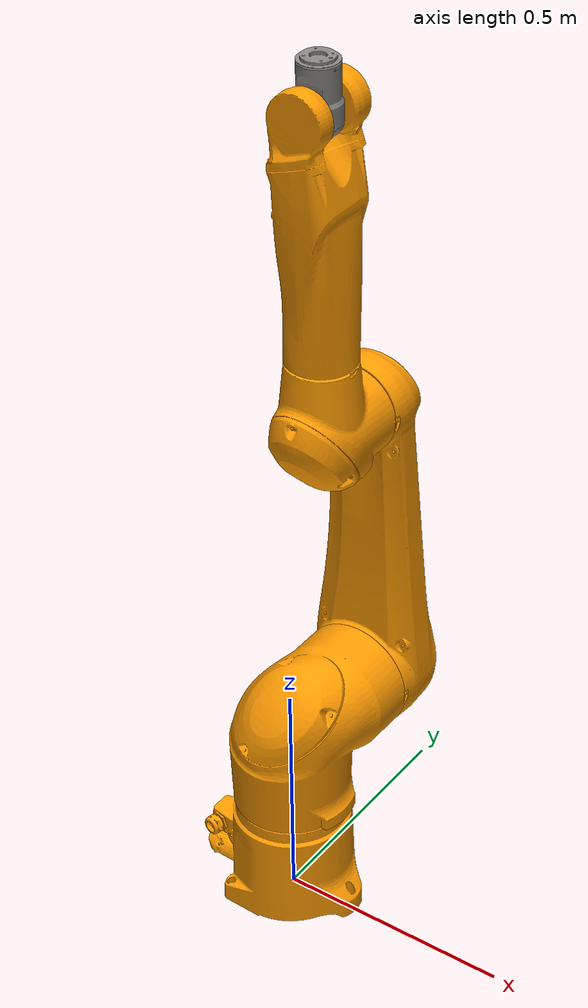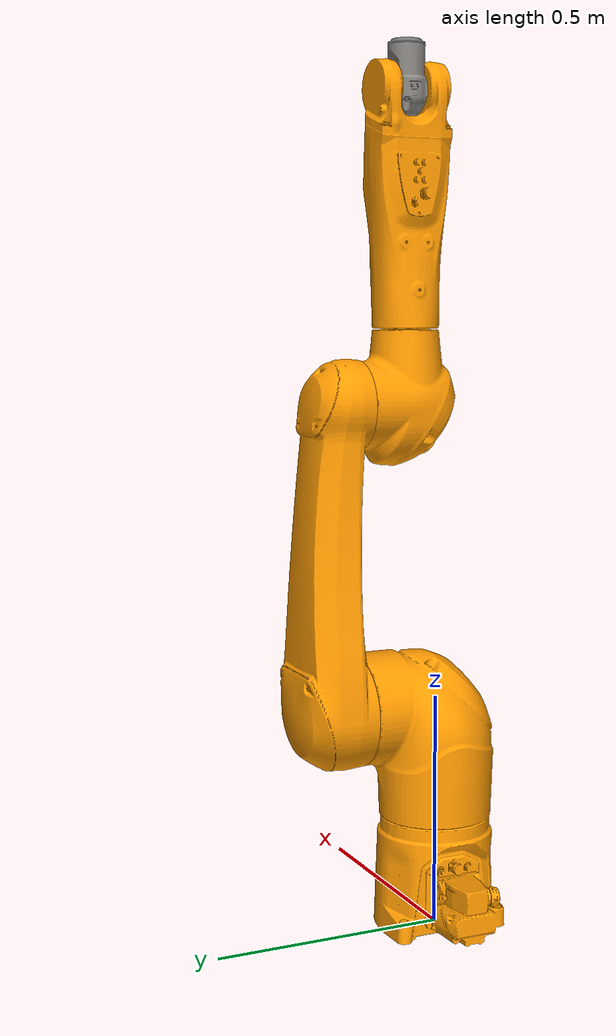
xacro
<?xml version="1.0" ?>
<!-- |    This document was autogenerated by xacro from /home/parallels/catkin_ws/src/staubli_tx2_90_support/urdf/tx2_90xl.xacro | -->
<!-- |    EDITING THIS FILE BY HAND IS NOT RECOMMENDED                                 | -->
<robot name="staubli_tx2_90xl">
    <!-- colours based on RAL values supplied by Staubli -->
    <!-- all RAL colours converted using http://www.visual-graphics.de/en/customer-care/ral-colours -->
    <!-- default colours for robots -->
    <!-- links: main serial chain -->
    <link name="base_link">
        <visual>
            <origin rpy="0 0 0" xyz="0 0 0" />
            <geometry>
                <mesh filename="package://staubli_tx2_90_support/meshes/tx2_90/visual/base_link.stl" />
            </geometry>
            <material name="">
                <color rgba="1.0 0.6078431372549019 0.0 1.0" />
            </material>
        </visual>
        <collision>
            <origin rpy="0 0 0" xyz="0 0 0" />
            <geometry>
                <mesh filename="package://staubli_tx2_90_support/meshes/tx2_90/collision/base_link.stl" />
            </geometry>
        </collision>

<inertial>
            <mass value="0.1" />
            <inertia ixx="0.003" iyy="0.02" izz="0.003" ixy="0.0" ixz="0.0" iyz="0.0" />
        </inertial>

    </link>
    <link name="link_1">
        <visual>
            <origin rpy="0 0 0" xyz="0 0 0" />
            <geometry>
                <mesh filename="package://staubli_tx2_90_support/meshes/tx2_90/visual/link_1.stl" />
            </geometry>
            <material name="">
                <color rgba="1.0 0.6078431372549019 0.0 1.0" />
            </material>
        </visual>
        <collision>
            <origin rpy="0 0 0" xyz="0 0 0" />
            <geometry>
                <mesh filename="package://staubli_tx2_90_support/meshes/tx2_90/collision/link_1.stl" />
            </geometry>
        </collision>

<inertial>
            <mass value="0.1" />
            <inertia ixx="0.003" iyy="0.02" izz="0.003" ixy="0.0" ixz="0.0" iyz="0.0" />
        </inertial>

    </link>
    <link name="link_2">
        <visual>
            <origin rpy="0 0 0" xyz="0 0 0" />
            <geometry>
                <mesh filename="package://staubli_tx2_90_support/meshes/tx2_90xl/visual/link_2.stl" />
            </geometry>
            <material name="">
                <color rgba="1.0 0.6078431372549019 0.0 1.0" />
            </material>
        </visual>
        <collision>
            <origin rpy="0 0 0" xyz="0 0 0" />
            <geometry>
                <mesh filename="package://staubli_tx2_90_support/meshes/tx2_90xl/collision/link_2.stl" />
            </geometry>
        </collision>

<inertial>
            <mass value="0.1" />
            <inertia ixx="0.003" iyy="0.02" izz="0.003" ixy="0.0" ixz="0.0" iyz="0.0" />
        </inertial>

    </link>
    <link name="link_3">
        <visual>
            <origin rpy="0 0 0" xyz="0 0 0" />
            <geometry>
                <mesh filename="package://staubli_tx2_90_support/meshes/tx2_90/visual/link_3.stl" />
            </geometry>
            <material name="">
                <color rgba="1.0 0.6078431372549019 0.0 1.0" />
            </material>
        </visual>
        <collision>
            <origin rpy="0 0 0" xyz="0 0 0" />
            <geometry>
                <mesh filename="package://staubli_tx2_90_support/meshes/tx2_90/collision/link_3.stl" />
            </geometry>
        </collision>

<inertial>
            <mass value="0.1" />
            <inertia ixx="0.003" iyy="0.02" izz="0.003" ixy="0.0" ixz="0.0" iyz="0.0" />
        </inertial>

    </link>
    <link name="link_4">
        <visual>
            <origin rpy="0 0 0" xyz="0 0 0" />
            <geometry>
                <mesh filename="package://staubli_tx2_90_support/meshes/tx2_90xl/visual/link_4.stl" />
            </geometry>
            <material name="">
                <color rgba="1.0 0.6078431372549019 0.0 1.0" />
            </material>
        </visual>
        <collision>
            <origin rpy="0 0 0" xyz="0 0 0" />
            <geometry>
                <mesh filename="package://staubli_tx2_90_support/meshes/tx2_90xl/collision/link_4.stl" />
            </geometry>
        </collision>

<inertial>
            <mass value="0.1" />
            <inertia ixx="0.003" iyy="0.02" izz="0.003" ixy="0.0" ixz="0.0" iyz="0.0" />
        </inertial>

    </link>
    <link name="link_5">
        <visual>
            <origin rpy="0 0 0" xyz="0 0 0" />
            <geometry>
                <mesh filename="package://staubli_tx2_90_support/meshes/tx2_90/visual/link_5.stl" />
            </geometry>
            <material name="">
                <color rgba="0.5294117647058824 0.5215686274509804 0.5058823529411764 1.0" />
            </material>
        </visual>
        <collision>
            <origin rpy="0 0 0" xyz="0 0 0" />
            <geometry>
                <mesh filename="package://staubli_tx2_90_support/meshes/tx2_90/collision/link_5.stl" />
            </geometry>
        </collision>

<inertial>
            <mass value="0.1" />
            <inertia ixx="0.003" iyy="0.02" izz="0.003" ixy="0.0" ixz="0.0" iyz="0.0" />
        </inertial>

    </link>
    <link name="link_6">
        <visual>
            <origin rpy="0 0 0" xyz="0 0 0" />
            <geometry>
                <mesh filename="package://staubli_tx2_90_support/meshes/tx2_90/visual/link_6.stl" />
            </geometry>
            <material name="">
                <color rgba="0.5294117647058824 0.5215686274509804 0.5058823529411764 1.0" />
            </material>
        </visual>
        <collision>
            <origin rpy="0 0 0" xyz="0 0 0" />
            <geometry>
                <mesh filename="package://staubli_tx2_90_support/meshes/tx2_90/collision/link_6.stl" />
            </geometry>
        </collision>

<inertial>
            <mass value="0.1" />
            <inertia ixx="0.003" iyy="0.02" izz="0.003" ixy="0.0" ixz="0.0" iyz="0.0" />
        </inertial>

    </link>
    <!-- joints: main serial chain -->
    <joint name="joint_1" type="revolute">
        <origin rpy="0 0 0" xyz="0 0 0.478" />
        <parent link="base_link" />
        <child link="link_1" />
        <axis xyz="0 0 1" />
        <!-- from Staubli instruction manual:
      (1) effort limit = 318 Nm if floor mounted
      (2) effort limit = 10 Nm if wall mounted -->
        <!-- nominal velocity limits are used -->
        <limit effort="318.0" lower="-3.141592653589793" upper="3.141592653589793" velocity="3.490658503988659" />
    </joint>
    <joint name="joint_2" type="revolute">
        <origin rpy="0 0 0" xyz="0.050 0 0" />
        <parent link="link_1" />
        <child link="link_2" />
        <axis xyz="0 1 0" />
        <!-- nominal velocity limits are used -->
        <limit effort="90.0" lower="-2.2689280275926285" upper="2.5743606466916362" velocity="2.9670597283903604" />
    </joint>
    <joint name="joint_3" type="revolute">
        <origin rpy="0 0 0" xyz="0 0.05 0.650" />
        <parent link="link_2" />
        <child link="link_3" />
        <axis xyz="0 1 0" />
        <!-- nominal velocity limits are used -->
        <limit effort="53.0" lower="-2.530727415391778" upper="2.530727415391778" velocity="4.1887902047863905" />
    </joint>
    <joint name="joint_4" type="revolute">
        <origin rpy="0 0 0" xyz="0 0 0" />
        <parent link="link_3" />
        <child link="link_4" />
        <axis xyz="0 0 1" />
        <!-- nominal velocity limits are used -->
        <limit effort="34.0" lower="-3.49" upper="3.49" velocity="7.3303828583761845" />
    </joint>
    <joint name="joint_5" type="revolute">
        <origin rpy="0 0 0" xyz="0 0 0.650" />
        <parent link="link_4" />
        <child link="link_5" />
        <axis xyz="0 1 0" />
        <!-- nominal velocity limits are used -->
        <limit effort="29.0" lower="-2.007128639793479" upper="2.443460952792061" velocity="6.283185307179586" />
    </joint>
    <joint name="joint_6" type="revolute">
        <origin rpy="0 0 0" xyz="0 0 0.100" />
        <parent link="link_5" />
        <child link="link_6" />
        <axis xyz="0 0 1" />
        <!-- nominal velocity limits are used -->
        <limit effort="11.0" lower="-4.71238898038469" upper="4.71238898038469" velocity="10.995574287564276" />
    </joint>
    <!-- ROS-Industrial 'base' frame: base_link to Staubli World Coordinates transform -->
    <link name="base" />
    <joint name="base_link-base" type="fixed">
        <origin rpy="0 0 0" xyz="0 0 0.478" />
        <parent link="base_link" />
        <child link="base" />
    </joint>
    <!-- ROS-Industrial 'flange' frame: attachment point for EEF models -->
    <link name="flange" />
    <joint name="joint_6-flange" type="fixed">
        <origin rpy="0 -1.5707963267948966 0" xyz="0 0 0" />
        <parent link="link_6" />
        <child link="flange" />
    </joint>
    <!-- ROS-Industrial 'tool0' frame: all-zeros tool frame -->
    <link name="tool0" />
    <joint name="flange-tool0" type="fixed">
        <parent link="flange" />
        <child link="tool0" />
        <origin rpy="0 1.5707963267948966 0" xyz="0 0 0" />
    </joint>

<transmission name="trans_joint_1">
        <type>transmission_interface/SimpleTransmission</type>
        <joint name="joint_1">
            <hardwareInterface>hardware_interface/PositionJointInterface</hardwareInterface>
        </joint>
        <actuator name="joint_1_motor">
            <hardwareInterface>hardware_interface/PositionJointInterface</hardwareInterface>
            <mechanicalReduction>1</mechanicalReduction>
        </actuator>
    </transmission>
    <transmission name="trans_joint_2">
        <type>transmission_interface/SimpleTransmission</type>
        <joint name="joint_2">
            <hardwareInterface>hardware_interface/PositionJointInterface</hardwareInterface>
        </joint>
        <actuator name="joint_2_motor">
            <hardwareInterface>hardware_interface/PositionJointInterface</hardwareInterface>
            <mechanicalReduction>1</mechanicalReduction>
        </actuator>
    </transmission>
    <transmission name="trans_joint_3">
        <type>transmission_interface/SimpleTransmission</type>
        <joint name="joint_3">
            <hardwareInterface>hardware_interface/PositionJointInterface</hardwareInterface>
        </joint>
        <actuator name="joint_3_motor">
            <hardwareInterface>hardware_interface/PositionJointInterface</hardwareInterface>
            <mechanicalReduction>1</mechanicalReduction>
        </actuator>
    </transmission>
    <transmission name="trans_joint_4">
        <type>transmission_interface/SimpleTransmission</type>
        <joint name="joint_4">
            <hardwareInterface>hardware_interface/PositionJointInterface</hardwareInterface>
        </joint>
        <actuator name="joint_4_motor">
            <hardwareInterface>hardware_interface/PositionJointInterface</hardwareInterface>
            <mechanicalReduction>1</mechanicalReduction>
        </actuator>
    </transmission>
    <transmission name="trans_joint_5">
        <type>transmission_interface/SimpleTransmission</type>
        <joint name="joint_5">
            <hardwareInterface>hardware_interface/PositionJointInterface</hardwareInterface>
        </joint>
        <actuator name="joint_5_motor">
            <hardwareInterface>hardware_interface/PositionJointInterface</hardwareInterface>
            <mechanicalReduction>1</mechanicalReduction>
        </actuator>
    </transmission>
    <transmission name="trans_joint_6">
        <type>transmission_interface/SimpleTransmission</type>
        <joint name="joint_6">
            <hardwareInterface>hardware_interface/PositionJointInterface</hardwareInterface>
        </joint>
        <actuator name="joint_6_motor">
            <hardwareInterface>hardware_interface/PositionJointInterface</hardwareInterface>
            <mechanicalReduction>1</mechanicalReduction>
        </actuator>
    </transmission>
    <gazebo>
        <plugin name="gazebo_ros_control" filename="libgazebo_ros_control.so">
            <robotNamespace>/</robotNamespace>
        </plugin>
    </gazebo>
</robot>
